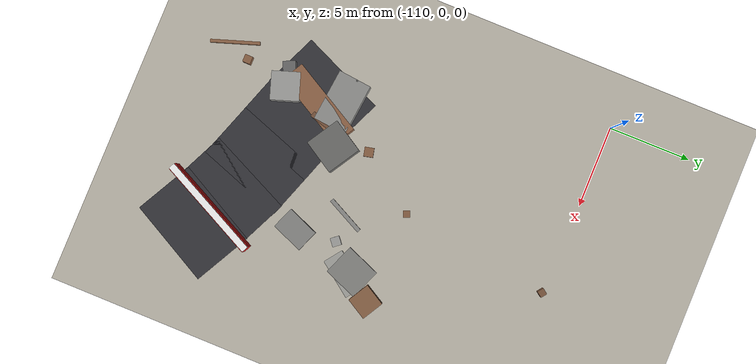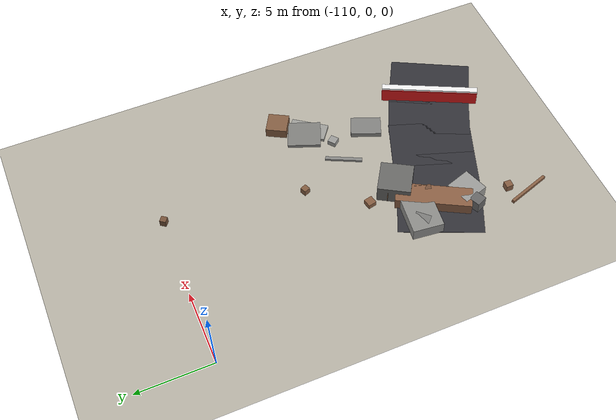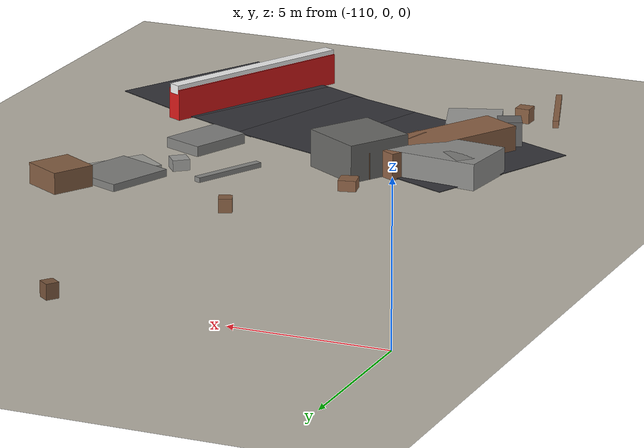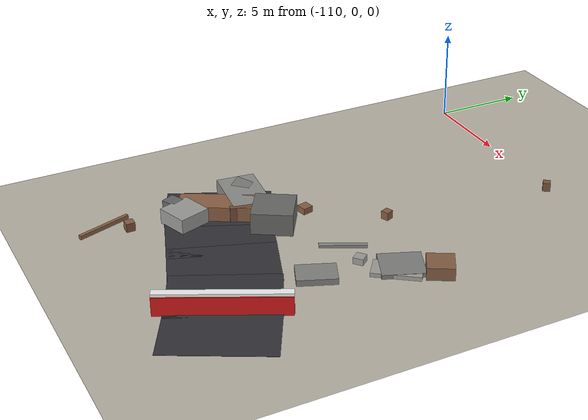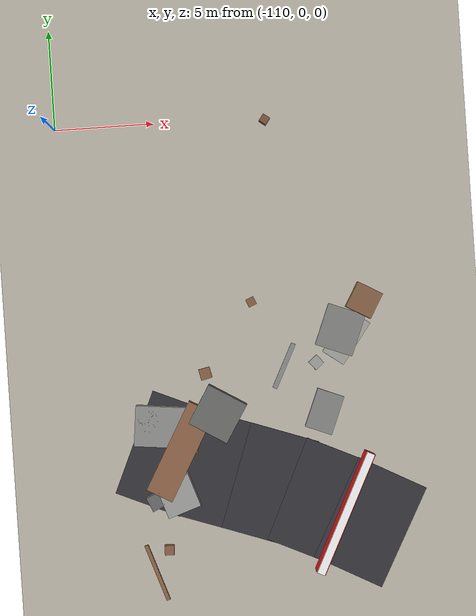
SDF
<sdf version="1.6">
 <world name="navitas_arena">
  <model name="ground_plane">
   <static>true</static>
   <link name="link">
    <collision name="collision">
     <geometry><plane><normal>0 0 1</normal><size>400 400</size></plane></geometry>
     <surface><friction><ode><mu>0.720</mu><mu2>0.720</mu2></ode></friction></surface>
    </collision>
    <visual name="visual">
     <cast_shadows>false</cast_shadows>
     <geometry><plane><normal>0 0 1</normal><size>400 400</size></plane></geometry>
     <material><ambient>0.720 0.700 0.650 1</ambient><diffuse>0.720 0.700 0.650 1</diffuse></material>
    </visual>
   </link>
  </model>
  <model name="road_kolay_1_1">
   <static>true</static>
   <pose>-95.375 -20.856 0.040 0 0 2.651</pose>
   <link name="link">
    <collision name="col"><geometry><box><size>3.766 5.520 0.020</size></box></geometry></collision>
    <visual name="vis">
     <geometry><box><size>3.766 5.520 0.020</size></box></geometry>
     <material><ambient>0.20 0.20 0.22 1</ambient><diffuse>0.20 0.20 0.22 1</diffuse></material>
    </visual>
   </link>
  </model>
  <model name="road_kolay_1_2">
   <static>true</static>
   <pose>-97.843 -19.620 0.040 0 0 2.705</pose>
   <link name="link">
    <collision name="col"><geometry><box><size>3.557 5.520 0.020</size></box></geometry></collision>
    <visual name="vis">
     <geometry><box><size>3.557 5.520 0.020</size></box></geometry>
     <material><ambient>0.20 0.20 0.22 1</ambient><diffuse>0.20 0.20 0.22 1</diffuse></material>
    </visual>
   </link>
  </model>
  <model name="road_kolay_1_3">
   <static>true</static>
   <pose>-100.305 -18.612 0.040 0 0 2.801</pose>
   <link name="link">
    <collision name="col"><geometry><box><size>3.570 5.520 0.020</size></box></geometry></collision>
    <visual name="vis">
     <geometry><box><size>3.570 5.520 0.020</size></box></geometry>
     <material><ambient>0.20 0.20 0.22 1</ambient><diffuse>0.20 0.20 0.22 1</diffuse></material>
    </visual>
   </link>
  </model>
  <model name="road_kolay_1_4">
   <static>true</static>
   <pose>-102.911 -17.697 0.040 0 0 2.806</pose>
   <link name="link">
    <collision name="col"><geometry><box><size>3.754 5.520 0.020</size></box></geometry></collision>
    <visual name="vis">
     <geometry><box><size>3.754 5.520 0.020</size></box></geometry>
     <material><ambient>0.20 0.20 0.22 1</ambient><diffuse>0.20 0.20 0.22 1</diffuse></material>
    </visual>
   </link>
  </model>
  <model name="road_kolay_1_5">
   <static>true</static>
   <pose>-105.442 -16.707 0.040 0 0 2.728</pose>
   <link name="link">
    <collision name="col"><geometry><box><size>3.486 5.520 0.020</size></box></geometry></collision>
    <visual name="vis">
     <geometry><box><size>3.486 5.520 0.020</size></box></geometry>
     <material><ambient>0.20 0.20 0.22 1</ambient><diffuse>0.20 0.20 0.22 1</diffuse></material>
    </visual>
   </link>
  </model>
  <model name="bar_kolay_1">
   <static>true</static>
   <pose>-96.639 -20.182 0.500 0 0 4.252</pose>
   <link name="link">
    <collision name="col"><geometry><box><size>6.520 0.500 1.000</size></box></geometry></collision>
    <visual name="vis">
     <geometry><box><size>6.520 0.500 1.000</size></box></geometry>
     <material><ambient>0.85 0.10 0.10 1</ambient><diffuse>0.85 0.10 0.10 1</diffuse></material>
    </visual>
   </link>
  </model>
  <model name="bar_kolay_1b">
   <static>true</static>
   <pose>-96.639 -20.182 1.000 0 0 4.252</pose>
   <link name="link">
    <collision name="col"><geometry><box><size>6.520 0.400 0.300</size></box></geometry></collision>
    <visual name="vis">
     <geometry><box><size>6.520 0.400 0.300</size></box></geometry>
     <material><ambient>0.95 0.95 0.95 1</ambient><diffuse>0.95 0.95 0.95 1</diffuse></material>
    </visual>
   </link>
  </model>
  <model name="blk_kolay_1_0_0">
   <static>true</static>
   <pose>-104.691 -16.580 0.425 0 0 1.061</pose>
   <link name="link">
    <collision name="col"><geometry><box><size>4.914 1.427 0.850</size></box></geometry></collision>
    <visual name="vis">
     <geometry><box><size>4.914 1.427 0.850</size></box></geometry>
     <material><ambient>0.55 0.38 0.27 1</ambient><diffuse>0.55 0.38 0.27 1</diffuse></material>
    </visual>
   </link>
  </model>
  <model name="blk_kolay_1_0_1">
   <static>true</static>
   <pose>-106.058 -18.996 0.425 0 0 2.004</pose>
   <link name="link">
    <collision name="col"><geometry><box><size>0.760 0.760 0.850</size></box></geometry></collision>
    <visual name="vis">
     <geometry><box><size>0.760 0.760 0.850</size></box></geometry>
     <material><ambient>0.40 0.40 0.40 1</ambient><diffuse>0.40 0.40 0.40 1</diffuse></material>
    </visual>
   </link>
  </model>
  <model name="blk_kolay_1_0_3">
   <static>true</static>
   <pose>-102.702 -14.793 0.603 0 0 2.594</pose>
   <link name="link">
    <collision name="col"><geometry><box><size>2.161 2.161 1.206</size></box></geometry></collision>
    <visual name="vis">
     <geometry><box><size>2.161 2.161 1.206</size></box></geometry>
     <material><ambient>0.41 0.41 0.40 1</ambient><diffuse>0.41 0.41 0.40 1</diffuse></material>
    </visual>
   </link>
  </model>
  <model name="blk_kolay_1_0_4">
   <static>true</static>
   <pose>-106.156 -14.981 0.425 0 0 2.377</pose>
   <link name="link">
    <collision name="col"><geometry><box><size>1.024 1.024 0.850</size></box></geometry></collision>
    <visual name="vis">
     <geometry><box><size>1.024 1.024 0.850</size></box></geometry>
     <material><ambient>0.49 0.49 0.48 1</ambient><diffuse>0.49 0.49 0.48 1</diffuse></material>
    </visual>
   </link>
  </model>
  <model name="blk_kolay_1_0_5">
   <static>true</static>
   <pose>-104.947 -18.795 0.425 0 0 0.324</pose>
   <link name="link">
    <collision name="col"><geometry><box><size>1.732 1.732 0.850</size></box></geometry></collision>
    <visual name="vis">
     <geometry><box><size>1.732 1.732 0.850</size></box></geometry>
     <material><ambient>0.61 0.61 0.60 1</ambient><diffuse>0.61 0.61 0.60 1</diffuse></material>
    </visual>
   </link>
  </model>
  <model name="blk_kolay_1_0_6">
   <static>true</static>
   <pose>-105.312 -15.311 0.425 0 0 3.035</pose>
   <link name="link">
    <collision name="col"><geometry><box><size>3.187 2.034 0.850</size></box></geometry></collision>
    <visual name="vis">
     <geometry><box><size>3.187 2.034 0.850</size></box></geometry>
     <material><ambient>0.55 0.55 0.54 1</ambient><diffuse>0.55 0.55 0.54 1</diffuse></material>
    </visual>
   </link>
  </model>
  <model name="blk_kolay_1_0_7">
   <static>true</static>
   <pose>-103.644 -15.305 0.425 0 0 1.295</pose>
   <link name="link">
    <collision name="col"><geometry><box><size>2.846 0.356 0.850</size></box></geometry></collision>
    <visual name="vis">
     <geometry><box><size>2.846 0.356 0.850</size></box></geometry>
     <material><ambient>0.46 0.32 0.23 1</ambient><diffuse>0.46 0.32 0.23 1</diffuse></material>
    </visual>
   </link>
  </model>
  <model name="deb_kolay_2">
   <static>true</static>
   <pose>-97.323 -15.088 0.167 0 0 1.186</pose>
   <link name="link">
    <collision name="col"><geometry><box><size>2.033 1.408 0.334</size></box></geometry></collision>
    <visual name="vis">
     <geometry><box><size>2.033 1.408 0.334</size></box></geometry>
     <material><ambient>0.51 0.51 0.50 1</ambient><diffuse>0.51 0.51 0.50 1</diffuse></material>
    </visual>
   </link>
  </model>
  <model name="deb_kolay_18">
   <static>true</static>
   <pose>-94.986 -9.610 0.342 0 0 1.050</pose>
   <link name="link">
    <collision name="col"><geometry><box><size>1.395 1.395 0.683</size></box></geometry></collision>
    <visual name="vis">
     <geometry><box><size>1.395 1.395 0.683</size></box></geometry>
     <material><ambient>0.52 0.37 0.26 1</ambient><diffuse>0.52 0.37 0.26 1</diffuse></material>
    </visual>
   </link>
  </model>
  <model name="deb_kolay_21">
   <static>true</static>
   <pose>-97.583 -12.586 0.177 0 0 0.686</pose>
   <link name="link">
    <collision name="col"><geometry><box><size>0.549 0.549 0.354</size></box></geometry></collision>
    <visual name="vis">
     <geometry><box><size>0.549 0.549 0.354</size></box></geometry>
     <material><ambient>0.61 0.61 0.60 1</ambient><diffuse>0.61 0.61 0.60 1</diffuse></material>
    </visual>
   </link>
  </model>
  <model name="deb_kolay_45">
   <static>true</static>
   <pose>-99.209 -12.656 0.079 0 0 1.109</pose>
   <link name="link">
    <collision name="col"><geometry><box><size>2.443 0.245 0.159</size></box></geometry></collision>
    <visual name="vis">
     <geometry><box><size>2.443 0.245 0.159</size></box></geometry>
     <material><ambient>0.53 0.53 0.52 1</ambient><diffuse>0.53 0.53 0.52 1</diffuse></material>
    </visual>
   </link>
  </model>
  <model name="deb_kolay_48">
   <static>true</static>
   <pose>-103.210 -12.782 0.174 0 0 1.789</pose>
   <link name="link">
    <collision name="col"><geometry><box><size>0.564 0.564 0.348</size></box></geometry></collision>
    <visual name="vis">
     <geometry><box><size>0.564 0.564 0.348</size></box></geometry>
     <material><ambient>0.53 0.37 0.26 1</ambient><diffuse>0.53 0.37 0.26 1</diffuse></material>
    </visual>
   </link>
  </model>
  <model name="deb_kolay_64">
   <static>true</static>
   <pose>-96.258 -11.023 0.117 0 0 1.193</pose>
   <link name="link">
    <collision name="col"><geometry><box><size>2.199 1.966 0.233</size></box></geometry></collision>
    <visual name="vis">
     <geometry><box><size>2.199 1.966 0.233</size></box></geometry>
     <material><ambient>0.50 0.50 0.49 1</ambient><diffuse>0.50 0.50 0.49 1</diffuse></material>
    </visual>
   </link>
  </model>
  <model name="deb_kolay_75">
   <static>true</static>
   <pose>-99.388 -0.185 0.244 0 0 0.933</pose>
   <link name="link">
    <collision name="col"><geometry><box><size>0.410 0.410 0.489</size></box></geometry></collision>
    <visual name="vis">
     <geometry><box><size>0.410 0.410 0.489</size></box></geometry>
     <material><ambient>0.47 0.33 0.23 1</ambient><diffuse>0.47 0.33 0.23 1</diffuse></material>
    </visual>
   </link>
  </model>
  <model name="deb_kolay_77">
   <static>true</static>
   <pose>-95.980 -11.418 0.111 0 0 0.936</pose>
   <link name="link">
    <collision name="col"><geometry><box><size>2.507 1.260 0.222</size></box></geometry></collision>
    <visual name="vis">
     <geometry><box><size>2.507 1.260 0.222</size></box></geometry>
     <material><ambient>0.62 0.62 0.60 1</ambient><diffuse>0.62 0.62 0.60 1</diffuse></material>
    </visual>
   </link>
  </model>
  <model name="deb_kolay_87">
   <static>true</static>
   <pose>-100.667 -9.318 0.221 0 0 1.965</pose>
   <link name="link">
    <collision name="col"><geometry><box><size>0.426 0.426 0.442</size></box></geometry></collision>
    <visual name="vis">
     <geometry><box><size>0.426 0.426 0.442</size></box></geometry>
     <material><ambient>0.51 0.36 0.25 1</ambient><diffuse>0.51 0.36 0.25 1</diffuse></material>
    </visual>
   </link>
  </model>
  <model name="deb_kolay_94">
   <static>true</static>
   <pose>-106.290 -22.670 0.113 0 0 1.896</pose>
   <link name="link">
    <collision name="col"><geometry><box><size>2.971 0.190 0.225</size></box></geometry></collision>
    <visual name="vis">
     <geometry><box><size>2.971 0.190 0.225</size></box></geometry>
     <material><ambient>0.54 0.38 0.27 1</ambient><diffuse>0.54 0.38 0.27 1</diffuse></material>
    </visual>
   </link>
  </model>
  <model name="deb_kolay_97">
   <static>true</static>
   <pose>-105.598 -21.535 0.241 0 0 1.558</pose>
   <link name="link">
    <collision name="col"><geometry><box><size>0.474 0.474 0.481</size></box></geometry></collision>
    <visual name="vis">
     <geometry><box><size>0.474 0.474 0.481</size></box></geometry>
     <material><ambient>0.53 0.37 0.26 1</ambient><diffuse>0.53 0.37 0.26 1</diffuse></material>
    </visual>
   </link>
  </model>
 </world>
</sdf>
